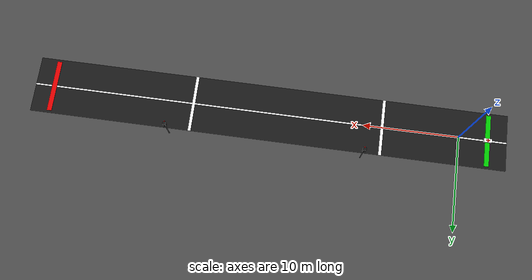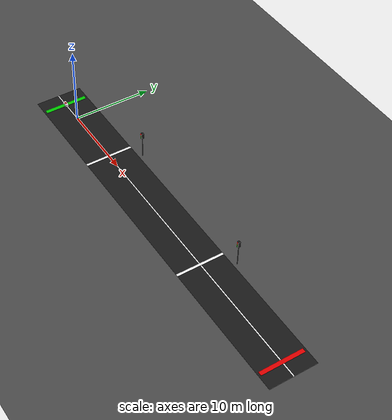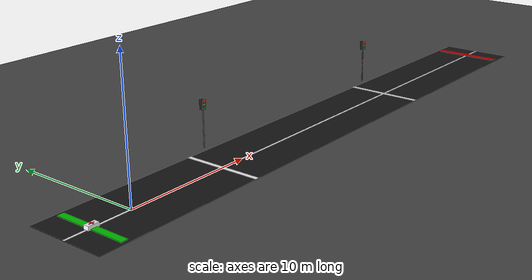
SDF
<?xml version="1.0" ?>
<sdf version="1.10">
  <world name="v2x_world">

    <!-- Physics -->
    <physics name="1ms" type="ignored">
      <max_step_size>0.001</max_step_size>
      <real_time_factor>1.0</real_time_factor>
    </physics>

    <!-- Plugins -->
    <plugin filename="gz-sim-physics-system" name="gz::sim::systems::Physics"/>
    <plugin filename="gz-sim-scene-broadcaster-system" name="gz::sim::systems::SceneBroadcaster"/>
    <plugin filename="gz-sim-user-commands-system" name="gz::sim::systems::UserCommands"/>

    <!-- Light -->
    <light name="sun" type="directional">
      <cast_shadows>true</cast_shadows>
      <pose>0 0 10 0 0 0</pose>
      <diffuse>0.8 0.8 0.8 1</diffuse>
      <specular>0.2 0.2 0.2 1</specular>
      <direction>-0.5 0.1 -0.9</direction>
    </light>

    <!-- Ground -->
    <model name="ground_plane">
      <static>true</static>
      <link name="link">
        <collision name="col">
          <geometry><plane><normal>0 0 1</normal><size>100 100</size></plane></geometry>
        </collision>
        <visual name="vis">
          <geometry><plane><normal>0 0 1</normal><size>100 100</size></plane></geometry>
          <material>
            <ambient>0.3 0.3 0.3 1</ambient>
            <diffuse>0.3 0.3 0.3 1</diffuse>
          </material>
        </visual>
      </link>
    </model>

    <!-- ═══ ROAD (x=-5 to x=45) ═══ -->
    <model name="road">
      <static>true</static>
      <pose>20 0 0.01 0 0 0</pose>
      <link name="link">
        <collision name="col">
          <geometry><box><size>50 6 0.02</size></box></geometry>
        </collision>
        <visual name="vis">
          <geometry><box><size>50 6 0.02</size></box></geometry>
          <material>
            <ambient>0.1 0.1 0.1 1</ambient>
            <diffuse>0.1 0.1 0.1 1</diffuse>
          </material>
        </visual>
      </link>
    </model>

    <!-- Centre line -->
    <model name="centre_line">
      <static>true</static>
      <pose>20 0 0.02 0 0 0</pose>
      <link name="link">
        <visual name="vis">
          <geometry><box><size>50 0.15 0.01</size></box></geometry>
          <material>
            <ambient>1 1 1 1</ambient>
            <diffuse>1 1 1 1</diffuse>
          </material>
        </visual>
      </link>
    </model>

    <!-- ═══ START marker (green) ═══ -->
    <model name="start_marker">
      <static>true</static>
      <pose>-3 0 0.05 0 0 0</pose>
      <link name="link">
        <visual name="vis">
          <geometry><box><size>0.5 5.5 0.05</size></box></geometry>
          <material>
            <ambient>0 0.8 0 1</ambient>
            <diffuse>0 0.8 0 1</diffuse>
          </material>
        </visual>
      </link>
    </model>

    <!-- ═══ GOAL marker (red) ═══ -->
    <model name="goal_marker">
      <static>true</static>
      <pose>43 0 0.05 0 0 0</pose>
      <link name="link">
        <visual name="vis">
          <geometry><box><size>0.5 5.5 0.05</size></box></geometry>
          <material>
            <ambient>0.9 0 0 1</ambient>
            <diffuse>0.9 0 0 1</diffuse>
          </material>
        </visual>
      </link>
    </model>

    <!-- ═══ STOP LINE 1 (x=8) ═══ -->
    <model name="stopline_1">
      <static>true</static>
      <pose>8 0 0.03 0 0 0</pose>
      <link name="link">
        <visual name="vis">
          <geometry><box><size>0.3 6 0.01</size></box></geometry>
          <material>
            <ambient>1 1 1 1</ambient>
            <diffuse>1 1 1 1</diffuse>
          </material>
        </visual>
      </link>
    </model>

    <!-- ═══ TRAFFIC LIGHT POLE 1 (x=10) ═══ -->
    <model name="traffic_light_1">
      <static>true</static>
      <pose>10 3.5 0 0 0 0</pose>
      <link name="link">
        <!-- Pole -->
        <visual name="pole">
          <pose>0 0 1.5 0 0 0</pose>
          <geometry><cylinder><radius>0.05</radius><length>3.0</length></cylinder></geometry>
          <material><ambient>0.3 0.3 0.3 1</ambient><diffuse>0.3 0.3 0.3 1</diffuse></material>
        </visual>
        <!-- Housing -->
        <visual name="housing">
          <pose>0 0 3.2 0 0 0</pose>
          <geometry><box><size>0.3 0.3 0.75</size></box></geometry>
          <material><ambient>0.1 0.1 0.1 1</ambient><diffuse>0.1 0.1 0.1 1</diffuse></material>
        </visual>
        <!-- RED -->
        <visual name="red_1">
          <pose>0 -0.16 3.47 0 1.5708 0</pose>
          <geometry><sphere><radius>0.09</radius></sphere></geometry>
          <material><ambient>1 0 0 1</ambient><diffuse>1 0 0 1</diffuse></material>
        </visual>
        <!-- YELLOW -->
        <visual name="yellow_1">
          <pose>0 -0.16 3.2 0 1.5708 0</pose>
          <geometry><sphere><radius>0.09</radius></sphere></geometry>
          <material><ambient>0.4 0.4 0 1</ambient><diffuse>0.4 0.4 0 1</diffuse></material>
        </visual>
        <!-- GREEN -->
        <visual name="green_1">
          <pose>0 -0.16 2.93 0 1.5708 0</pose>
          <geometry><sphere><radius>0.09</radius></sphere></geometry>
          <material><ambient>0 0.4 0 1</ambient><diffuse>0 0.4 0 1</diffuse></material>
        </visual>
      </link>
    </model>

    <!-- ═══ STOP LINE 2 (x=28) ═══ -->
    <model name="stopline_2">
      <static>true</static>
      <pose>28 0 0.03 0 0 0</pose>
      <link name="link">
        <visual name="vis">
          <geometry><box><size>0.3 6 0.01</size></box></geometry>
          <material>
            <ambient>1 1 1 1</ambient>
            <diffuse>1 1 1 1</diffuse>
          </material>
        </visual>
      </link>
    </model>

    <!-- ═══ TRAFFIC LIGHT POLE 2 (x=30) ═══ -->
    <model name="traffic_light_2">
      <static>true</static>
      <pose>30 3.5 0 0 0 0</pose>
      <link name="link">
        <!-- Pole -->
        <visual name="pole">
          <pose>0 0 1.5 0 0 0</pose>
          <geometry><cylinder><radius>0.05</radius><length>3.0</length></cylinder></geometry>
          <material><ambient>0.3 0.3 0.3 1</ambient><diffuse>0.3 0.3 0.3 1</diffuse></material>
        </visual>
        <!-- Housing -->
        <visual name="housing">
          <pose>0 0 3.2 0 0 0</pose>
          <geometry><box><size>0.3 0.3 0.75</size></box></geometry>
          <material><ambient>0.1 0.1 0.1 1</ambient><diffuse>0.1 0.1 0.1 1</diffuse></material>
        </visual>
        <!-- RED -->
        <visual name="red_2">
          <pose>0 -0.16 3.47 0 1.5708 0</pose>
          <geometry><sphere><radius>0.09</radius></sphere></geometry>
          <material><ambient>1 0 0 1</ambient><diffuse>1 0 0 1</diffuse></material>
        </visual>
        <!-- YELLOW -->
        <visual name="yellow_2">
          <pose>0 -0.16 3.2 0 1.5708 0</pose>
          <geometry><sphere><radius>0.09</radius></sphere></geometry>
          <material><ambient>0.4 0.4 0 1</ambient><diffuse>0.4 0.4 0 1</diffuse></material>
        </visual>
        <!-- GREEN -->
        <visual name="green_2">
          <pose>0 -0.16 2.93 0 1.5708 0</pose>
          <geometry><sphere><radius>0.09</radius></sphere></geometry>
          <material><ambient>0 0.4 0 1</ambient><diffuse>0 0.4 0 1</diffuse></material>
        </visual>
      </link>
    </model>

    <!-- ═══ VEHICLE (box representing ambulance) ═══ -->
    <model name="ambulance">
      <pose>-3 0 0.15 0 0 0</pose>
      <link name="link">
        <collision name="col">
          <geometry><box><size>0.8 0.4 0.3</size></box></geometry>
        </collision>
        <visual name="body">
          <geometry><box><size>0.8 0.4 0.3</size></box></geometry>
          <material>
            <ambient>1 1 1 1</ambient>
            <diffuse>1 1 1 1</diffuse>
          </material>
        </visual>
        <!-- Red cross on top -->
        <visual name="cross_h">
          <pose>0 0 0.16 0 0 0</pose>
          <geometry><box><size>0.4 0.08 0.01</size></box></geometry>
          <material><ambient>1 0 0 1</ambient><diffuse>1 0 0 1</diffuse></material>
        </visual>
        <visual name="cross_v">
          <pose>0 0 0.16 0 0 0</pose>
          <geometry><box><size>0.08 0.4 0.01</size></box></geometry>
          <material><ambient>1 0 0 1</ambient><diffuse>1 0 0 1</diffuse></material>
        </visual>
        <inertial>
          <mass>10</mass>
          <inertia><ixx>1</ixx><iyy>1</iyy><izz>1</izz></inertia>
        </inertial>
      </link>
    </model>

  </world>
</sdf>
